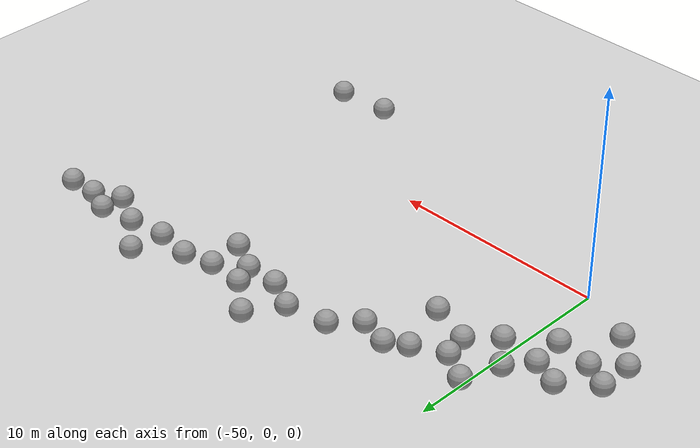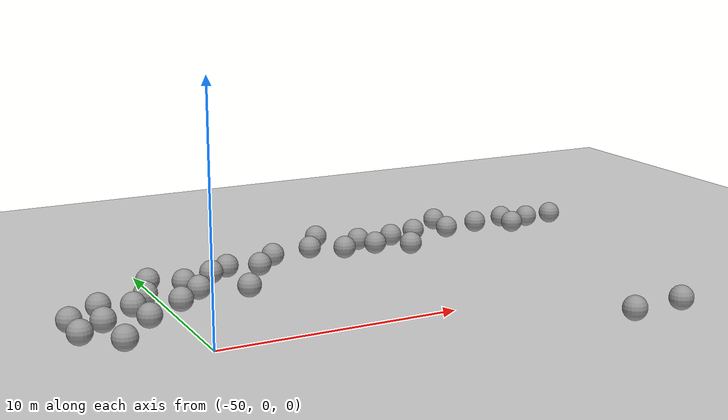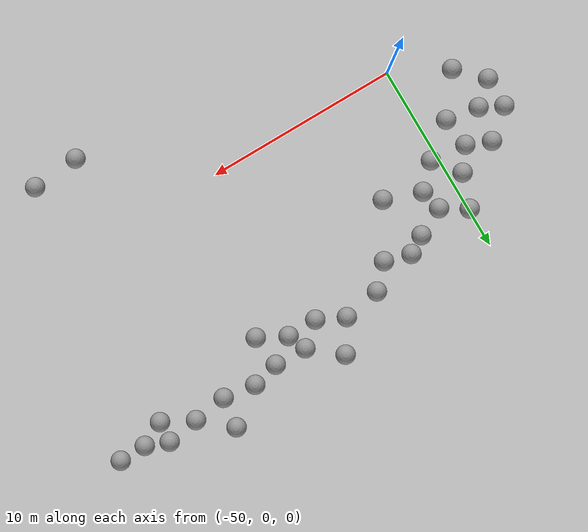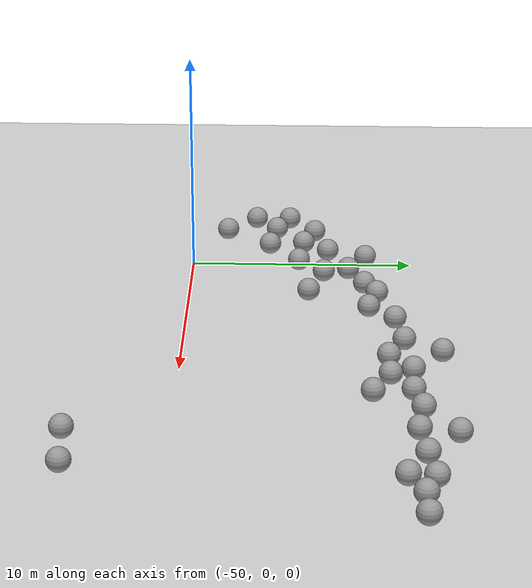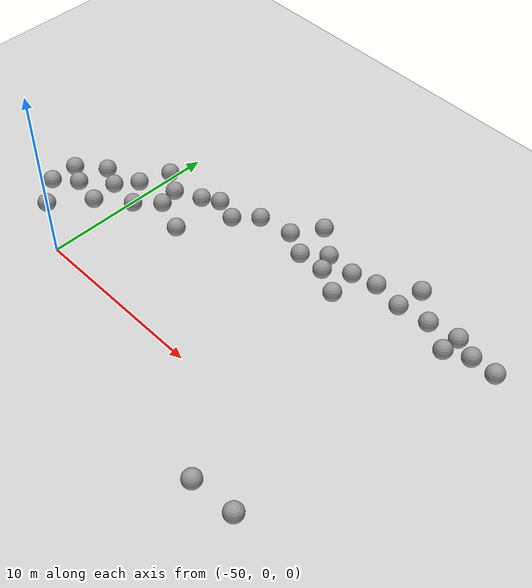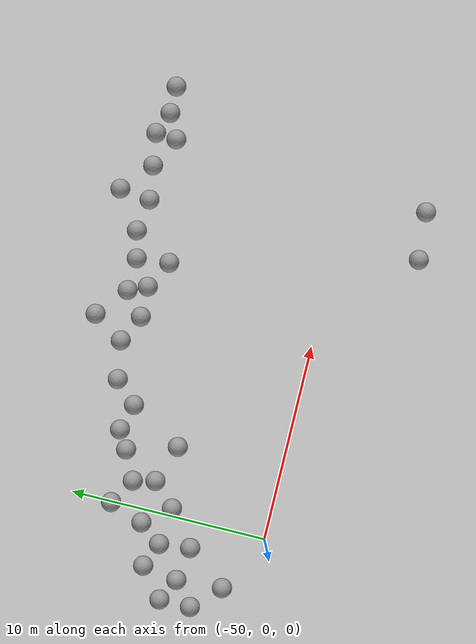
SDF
<sdf version="1.6">
 <world name="default">
  <model name="ground_plane">
   <static>1</static>
   <link name="link">
    <collision name="collision">
     <geometry><plane><normal>0 0 1</normal><size>100 100</size></plane></geometry>
     <surface><friction><ode><mu>100</mu><mu2>50</mu2></ode></friction></surface>
    </collision>
    <visual name="visual">
     <cast_shadows>0</cast_shadows>
     <geometry><plane><normal>0 0 1</normal><size>100 100</size></plane></geometry>
     <material>
      <script><uri>file://media/materials/scripts/gazebo.material</uri><name>Gazebo/Grey</name></script>
     </material>
    </visual>
   </link>
  </model>
  <model name="unit_sphere_0_clone_42">
   <pose>-46.5174 5.3531 0.5 0 -0 0</pose>
   <link name="link">
    <inertial>
     <mass>1</mass>
     <inertia><ixx>0.1</ixx><ixy>0</ixy><ixz>0</ixz><iyy>0.1</iyy><iyz>0</iyz><izz>0.1</izz></inertia>
    </inertial>
    <collision name="collision"><geometry><sphere><radius>0.5</radius></sphere></geometry></collision>
    <visual name="visual">
     <geometry><sphere><radius>0.5</radius></sphere></geometry>
     <material>
      <script><name>Gazebo/Grey</name><uri>file://media/materials/scripts/gazebo.material</uri></script>
     </material>
    </visual>
   </link>
  </model>
  <model name="unit_sphere_0_clone_43">
   <pose>-37.6069 8.01409 0.5 0 -0 0</pose>
   <link name="link">
    <inertial>
     <mass>1</mass>
     <inertia><ixx>0.1</ixx><ixy>0</ixy><ixz>0</ixz><iyy>0.1</iyy><iyz>0</iyz><izz>0.1</izz></inertia>
    </inertial>
    <collision name="collision"><geometry><sphere><radius>0.5</radius></sphere></geometry></collision>
    <visual name="visual">
     <geometry><sphere><radius>0.5</radius></sphere></geometry>
     <material>
      <script><name>Gazebo/Grey</name><uri>file://media/materials/scripts/gazebo.material</uri></script>
     </material>
    </visual>
   </link>
  </model>
  <model name="unit_sphere_0_clone_44">
   <pose>-31.3408 10.2531 0.5 0 -0 0</pose>
   <link name="link">
    <inertial>
     <mass>1</mass>
     <inertia><ixx>0.1</ixx><ixy>0</ixy><ixz>0</ixz><iyy>0.1</iyy><iyz>0</iyz><izz>0.1</izz></inertia>
    </inertial>
    <collision name="collision"><geometry><sphere><radius>0.5</radius></sphere></geometry></collision>
    <visual name="visual">
     <geometry><sphere><radius>0.5</radius></sphere></geometry>
     <material>
      <script><name>Gazebo/Grey</name><uri>file://media/materials/scripts/gazebo.material</uri></script>
     </material>
    </visual>
   </link>
  </model>
  <model name="unit_sphere_0_clone_90">
   <pose>-34.4417 -4.20399 0.5 -0.015539 0.010898 -7.9e-05</pose>
   <link name="link">
    <inertial>
     <mass>1</mass>
     <inertia><ixx>0.1</ixx><ixy>0</ixy><ixz>0</ixz><iyy>0.1</iyy><iyz>0</iyz><izz>0.1</izz></inertia>
    </inertial>
    <collision name="collision"><geometry><sphere><radius>0.5</radius></sphere></geometry></collision>
    <visual name="visual">
     <geometry><sphere><radius>0.5</radius></sphere></geometry>
     <material>
      <script><name>Gazebo/Grey</name><uri>file://media/materials/scripts/gazebo.material</uri></script>
     </material>
    </visual>
   </link>
  </model>
  <model name="unit_sphere_0_clone_101">
   <pose>-54.1271 4.40772 0.5 0 -0 0</pose>
   <link name="link">
    <inertial>
     <mass>1</mass>
     <inertia><ixx>0.1</ixx><ixy>0</ixy><ixz>0</ixz><iyy>0.1</iyy><iyz>0</iyz><izz>0.1</izz></inertia>
    </inertial>
    <collision name="collision"><geometry><sphere><radius>0.5</radius></sphere></geometry></collision>
    <visual name="visual">
     <geometry><sphere><radius>0.5</radius></sphere></geometry>
     <material>
      <script><name>Gazebo/Grey</name><uri>file://media/materials/scripts/gazebo.material</uri></script>
     </material>
    </visual>
   </link>
  </model>
  <model name="unit_sphere_0_clone_102">
   <pose>-49.9988 7.93368 0.5 0 -0 0</pose>
   <link name="link">
    <inertial>
     <mass>1</mass>
     <inertia><ixx>0.1</ixx><ixy>0</ixy><ixz>0</ixz><iyy>0.1</iyy><iyz>0</iyz><izz>0.1</izz></inertia>
    </inertial>
    <collision name="collision"><geometry><sphere><radius>0.5</radius></sphere></geometry></collision>
    <visual name="visual">
     <geometry><sphere><radius>0.5</radius></sphere></geometry>
     <material>
      <script><name>Gazebo/Grey</name><uri>file://media/materials/scripts/gazebo.material</uri></script>
     </material>
    </visual>
   </link>
  </model>
  <model name="unit_sphere_0_clone_103">
   <pose>-43.9323 9.11042 0.5 0 -0 0</pose>
   <link name="link">
    <inertial>
     <mass>1</mass>
     <inertia><ixx>0.1</ixx><ixy>0</ixy><ixz>0</ixz><iyy>0.1</iyy><iyz>0</iyz><izz>0.1</izz></inertia>
    </inertial>
    <collision name="collision"><geometry><sphere><radius>0.5</radius></sphere></geometry></collision>
    <visual name="visual">
     <geometry><sphere><radius>0.5</radius></sphere></geometry>
     <material>
      <script><name>Gazebo/Grey</name><uri>file://media/materials/scripts/gazebo.material</uri></script>
     </material>
    </visual>
   </link>
  </model>
  <model name="unit_sphere_0_clone_104">
   <pose>-39.4486 9.71826 0.5 0 -0 0</pose>
   <link name="link">
    <inertial>
     <mass>1</mass>
     <inertia><ixx>0.1</ixx><ixy>0</ixy><ixz>0</ixz><iyy>0.1</iyy><iyz>0</iyz><izz>0.1</izz></inertia>
    </inertial>
    <collision name="collision"><geometry><sphere><radius>0.5</radius></sphere></geometry></collision>
    <visual name="visual">
     <geometry><sphere><radius>0.5</radius></sphere></geometry>
     <material>
      <script><name>Gazebo/Grey</name><uri>file://media/materials/scripts/gazebo.material</uri></script>
     </material>
    </visual>
   </link>
  </model>
  <model name="unit_sphere_0_clone_105">
   <pose>-34.5379 11.328 0.5 0 -0 0</pose>
   <link name="link">
    <inertial>
     <mass>1</mass>
     <inertia><ixx>0.1</ixx><ixy>0</ixy><ixz>0</ixz><iyy>0.1</iyy><iyz>0</iyz><izz>0.1</izz></inertia>
    </inertial>
    <collision name="collision"><geometry><sphere><radius>0.5</radius></sphere></geometry></collision>
    <visual name="visual">
     <geometry><sphere><radius>0.5</radius></sphere></geometry>
     <material>
      <script><name>Gazebo/Grey</name><uri>file://media/materials/scripts/gazebo.material</uri></script>
     </material>
    </visual>
   </link>
  </model>
  <model name="unit_sphere_1_clone_101">
   <pose>-32 -4 0.5 0 -0 0</pose>
   <link name="link">
    <inertial>
     <mass>1</mass>
     <inertia><ixx>0.1</ixx><ixy>0</ixy><ixz>0</ixz><iyy>0.1</iyy><iyz>0</iyz><izz>0.1</izz></inertia>
    </inertial>
    <collision name="collision"><geometry><sphere><radius>0.5</radius></sphere></geometry></collision>
    <visual name="visual">
     <geometry><sphere><radius>0.5</radius></sphere></geometry>
     <material>
      <script><name>Gazebo/Grey</name><uri>file://media/materials/scripts/gazebo.material</uri></script>
     </material>
    </visual>
   </link>
  </model>
  <model name="unit_sphere_1_clone_143">
   <pose>-28.793 9.82665 0.5 0 -0 0</pose>
   <link name="link">
    <inertial>
     <mass>1</mass>
     <inertia><ixx>0.1</ixx><ixy>0</ixy><ixz>0</ixz><iyy>0.1</iyy><iyz>0</iyz><izz>0.1</izz></inertia>
    </inertial>
    <collision name="collision"><geometry><sphere><radius>0.5</radius></sphere></geometry></collision>
    <visual name="visual">
     <geometry><sphere><radius>0.5</radius></sphere></geometry>
     <material>
      <script><name>Gazebo/Grey</name><uri>file://media/materials/scripts/gazebo.material</uri></script>
     </material>
    </visual>
   </link>
  </model>
  <model name="unit_sphere_1_clone_144">
   <pose>-30.1822 9.80294 0.5 0 -0 0</pose>
   <link name="link">
    <inertial>
     <mass>1</mass>
     <inertia><ixx>0.1</ixx><ixy>0</ixy><ixz>0</ixz><iyy>0.1</iyy><iyz>0</iyz><izz>0.1</izz></inertia>
    </inertial>
    <collision name="collision"><geometry><sphere><radius>0.5</radius></sphere></geometry></collision>
    <visual name="visual">
     <geometry><sphere><radius>0.5</radius></sphere></geometry>
     <material>
      <script><name>Gazebo/Grey</name><uri>file://media/materials/scripts/gazebo.material</uri></script>
     </material>
    </visual>
   </link>
  </model>
  <model name="unit_sphere_1_clone_145">
   <pose>-31.4192 9.17784 0.5 0 -0 0</pose>
   <link name="link">
    <inertial>
     <mass>1</mass>
     <inertia><ixx>0.1</ixx><ixy>0</ixy><ixz>0</ixz><iyy>0.1</iyy><iyz>0</iyz><izz>0.1</izz></inertia>
    </inertial>
    <collision name="collision"><geometry><sphere><radius>0.5</radius></sphere></geometry></collision>
    <visual name="visual">
     <geometry><sphere><radius>0.5</radius></sphere></geometry>
     <material>
      <script><name>Gazebo/Grey</name><uri>file://media/materials/scripts/gazebo.material</uri></script>
     </material>
    </visual>
   </link>
  </model>
  <model name="unit_sphere_1_clone_146">
   <pose>-33 10 0.5 0 -0 0</pose>
   <link name="link">
    <inertial>
     <mass>1</mass>
     <inertia><ixx>0.1</ixx><ixy>0</ixy><ixz>0</ixz><iyy>0.1</iyy><iyz>0</iyz><izz>0.1</izz></inertia>
    </inertial>
    <collision name="collision"><geometry><sphere><radius>0.5</radius></sphere></geometry></collision>
    <visual name="visual">
     <geometry><sphere><radius>0.5</radius></sphere></geometry>
     <material>
      <script><name>Gazebo/Grey</name><uri>file://media/materials/scripts/gazebo.material</uri></script>
     </material>
    </visual>
   </link>
  </model>
  <model name="unit_sphere_1_clone_147">
   <pose>-34.7295 9.75722 0.5 0 -0 0</pose>
   <link name="link">
    <inertial>
     <mass>1</mass>
     <inertia><ixx>0.1</ixx><ixy>0</ixy><ixz>0</ixz><iyy>0.1</iyy><iyz>0</iyz><izz>0.1</izz></inertia>
    </inertial>
    <collision name="collision"><geometry><sphere><radius>0.5</radius></sphere></geometry></collision>
    <visual name="visual">
     <geometry><sphere><radius>0.5</radius></sphere></geometry>
     <material>
      <script><name>Gazebo/Grey</name><uri>file://media/materials/scripts/gazebo.material</uri></script>
     </material>
    </visual>
   </link>
  </model>
  <model name="unit_sphere_1_clone_148">
   <pose>-36.4006 10 0.5 0 -0 0</pose>
   <link name="link">
    <inertial>
     <mass>1</mass>
     <inertia><ixx>0.1</ixx><ixy>0</ixy><ixz>0</ixz><iyy>0.1</iyy><iyz>0</iyz><izz>0.1</izz></inertia>
    </inertial>
    <collision name="collision"><geometry><sphere><radius>0.5</radius></sphere></geometry></collision>
    <visual name="visual">
     <geometry><sphere><radius>0.5</radius></sphere></geometry>
     <material>
      <script><name>Gazebo/Grey</name><uri>file://media/materials/scripts/gazebo.material</uri></script>
     </material>
    </visual>
   </link>
  </model>
  <model name="unit_sphere_1_clone_149">
   <pose>-37.7791 9.66436 0.5 0 -0 0</pose>
   <link name="link">
    <inertial>
     <mass>1</mass>
     <inertia><ixx>0.1</ixx><ixy>0</ixy><ixz>0</ixz><iyy>0.1</iyy><iyz>0</iyz><izz>0.1</izz></inertia>
    </inertial>
    <collision name="collision"><geometry><sphere><radius>0.5</radius></sphere></geometry></collision>
    <visual name="visual">
     <geometry><sphere><radius>0.5</radius></sphere></geometry>
     <material>
      <script><name>Gazebo/Grey</name><uri>file://media/materials/scripts/gazebo.material</uri></script>
     </material>
    </visual>
   </link>
  </model>
  <model name="unit_sphere_1_clone_150">
   <pose>-39.0416 8.77234 0.5 0 -0 0</pose>
   <link name="link">
    <inertial>
     <mass>1</mass>
     <inertia><ixx>0.1</ixx><ixy>0</ixy><ixz>0</ixz><iyy>0.1</iyy><iyz>0</iyz><izz>0.1</izz></inertia>
    </inertial>
    <collision name="collision"><geometry><sphere><radius>0.5</radius></sphere></geometry></collision>
    <visual name="visual">
     <geometry><sphere><radius>0.5</radius></sphere></geometry>
     <material>
      <script><name>Gazebo/Grey</name><uri>file://media/materials/scripts/gazebo.material</uri></script>
     </material>
    </visual>
   </link>
  </model>
  <model name="unit_sphere_1_clone_151">
   <pose>-40.5983 8.74661 0.5 0 -0 0</pose>
   <link name="link">
    <inertial>
     <mass>1</mass>
     <inertia><ixx>0.1</ixx><ixy>0</ixy><ixz>0</ixz><iyy>0.1</iyy><iyz>0</iyz><izz>0.1</izz></inertia>
    </inertial>
    <collision name="collision"><geometry><sphere><radius>0.5</radius></sphere></geometry></collision>
    <visual name="visual">
     <geometry><sphere><radius>0.5</radius></sphere></geometry>
     <material>
      <script><name>Gazebo/Grey</name><uri>file://media/materials/scripts/gazebo.material</uri></script>
     </material>
    </visual>
   </link>
  </model>
  <model name="unit_sphere_1_clone_152">
   <pose>-41 11 0.5 0 -0 0</pose>
   <link name="link">
    <inertial>
     <mass>1</mass>
     <inertia><ixx>0.1</ixx><ixy>0</ixy><ixz>0</ixz><iyy>0.1</iyy><iyz>0</iyz><izz>0.1</izz></inertia>
    </inertial>
    <collision name="collision"><geometry><sphere><radius>0.5</radius></sphere></geometry></collision>
    <visual name="visual">
     <geometry><sphere><radius>0.5</radius></sphere></geometry>
     <material>
      <script><name>Gazebo/Grey</name><uri>file://media/materials/scripts/gazebo.material</uri></script>
     </material>
    </visual>
   </link>
  </model>
  <model name="unit_sphere_1_clone_153">
   <pose>-42.003 9.43991 0.5 0 -0 0</pose>
   <link name="link">
    <inertial>
     <mass>1</mass>
     <inertia><ixx>0.1</ixx><ixy>0</ixy><ixz>0</ixz><iyy>0.1</iyy><iyz>0</iyz><izz>0.1</izz></inertia>
    </inertial>
    <collision name="collision"><geometry><sphere><radius>0.5</radius></sphere></geometry></collision>
    <visual name="visual">
     <geometry><sphere><radius>0.5</radius></sphere></geometry>
     <material>
      <script><name>Gazebo/Grey</name><uri>file://media/materials/scripts/gazebo.material</uri></script>
     </material>
    </visual>
   </link>
  </model>
  <model name="unit_sphere_1_clone_154">
   <pose>-45 8 0.5 0 -0 0</pose>
   <link name="link">
    <inertial>
     <mass>1</mass>
     <inertia><ixx>0.1</ixx><ixy>0</ixy><ixz>0</ixz><iyy>0.1</iyy><iyz>0</iyz><izz>0.1</izz></inertia>
    </inertial>
    <collision name="collision"><geometry><sphere><radius>0.5</radius></sphere></geometry></collision>
    <visual name="visual">
     <geometry><sphere><radius>0.5</radius></sphere></geometry>
     <material>
      <script><name>Gazebo/Grey</name><uri>file://media/materials/scripts/gazebo.material</uri></script>
     </material>
    </visual>
   </link>
  </model>
  <model name="unit_sphere_1_clone_155">
   <pose>-46.3586 8.38733 0.5 -0.027429 0.045384 -0.000637</pose>
   <link name="link">
    <inertial>
     <mass>1</mass>
     <inertia><ixx>0.1</ixx><ixy>0</ixy><ixz>0</ixz><iyy>0.1</iyy><iyz>0</iyz><izz>0.1</izz></inertia>
    </inertial>
    <collision name="collision"><geometry><sphere><radius>0.5</radius></sphere></geometry></collision>
    <visual name="visual">
     <geometry><sphere><radius>0.5</radius></sphere></geometry>
     <material>
      <script><name>Gazebo/Grey</name><uri>file://media/materials/scripts/gazebo.material</uri></script>
     </material>
    </visual>
   </link>
  </model>
  <model name="unit_sphere_1_clone_156">
   <pose>-47.2598 7.84314 0.5 0.02742 -0.045177 -0.000632</pose>
   <link name="link">
    <inertial>
     <mass>1</mass>
     <inertia><ixx>0.1</ixx><ixy>0</ixy><ixz>0</ixz><iyy>0.1</iyy><iyz>0</iyz><izz>0.1</izz></inertia>
    </inertial>
    <collision name="collision"><geometry><sphere><radius>0.5</radius></sphere></geometry></collision>
    <visual name="visual">
     <geometry><sphere><radius>0.5</radius></sphere></geometry>
     <material>
      <script><name>Gazebo/Grey</name><uri>file://media/materials/scripts/gazebo.material</uri></script>
     </material>
    </visual>
   </link>
  </model>
  <model name="unit_sphere_1_clone_157">
   <pose>-48.7 7.14076 0.5 0 -0 0</pose>
   <link name="link">
    <inertial>
     <mass>1</mass>
     <inertia><ixx>0.1</ixx><ixy>0</ixy><ixz>0</ixz><iyy>0.1</iyy><iyz>0</iyz><izz>0.1</izz></inertia>
    </inertial>
    <collision name="collision"><geometry><sphere><radius>0.5</radius></sphere></geometry></collision>
    <visual name="visual">
     <geometry><sphere><radius>0.5</radius></sphere></geometry>
     <material>
      <script><name>Gazebo/Grey</name><uri>file://media/materials/scripts/gazebo.material</uri></script>
     </material>
    </visual>
   </link>
  </model>
  <model name="unit_sphere_1_clone_158">
   <pose>-48.4424 6.02995 0.5 0 -0 0</pose>
   <link name="link">
    <inertial>
     <mass>1</mass>
     <inertia><ixx>0.1</ixx><ixy>0</ixy><ixz>0</ixz><iyy>0.1</iyy><iyz>0</iyz><izz>0.1</izz></inertia>
    </inertial>
    <collision name="collision"><geometry><sphere><radius>0.5</radius></sphere></geometry></collision>
    <visual name="visual">
     <geometry><sphere><radius>0.5</radius></sphere></geometry>
     <material>
      <script><name>Gazebo/Grey</name><uri>file://media/materials/scripts/gazebo.material</uri></script>
     </material>
    </visual>
   </link>
  </model>
  <model name="unit_sphere_1_clone_159">
   <pose>-50.6225 6.21314 0.5 0 -0 0</pose>
   <link name="link">
    <inertial>
     <mass>1</mass>
     <inertia><ixx>0.1</ixx><ixy>0</ixy><ixz>0</ixz><iyy>0.1</iyy><iyz>0</iyz><izz>0.1</izz></inertia>
    </inertial>
    <collision name="collision"><geometry><sphere><radius>0.5</radius></sphere></geometry></collision>
    <visual name="visual">
     <geometry><sphere><radius>0.5</radius></sphere></geometry>
     <material>
      <script><name>Gazebo/Grey</name><uri>file://media/materials/scripts/gazebo.material</uri></script>
     </material>
    </visual>
   </link>
  </model>
  <model name="unit_sphere_1_clone_160">
   <pose>-49.5756 4.89135 0.5 0 -0 0</pose>
   <link name="link">
    <inertial>
     <mass>1</mass>
     <inertia><ixx>0.1</ixx><ixy>0</ixy><ixz>0</ixz><iyy>0.1</iyy><iyz>0</iyz><izz>0.1</izz></inertia>
    </inertial>
    <collision name="collision"><geometry><sphere><radius>0.5</radius></sphere></geometry></collision>
    <visual name="visual">
     <geometry><sphere><radius>0.5</radius></sphere></geometry>
     <material>
      <script><name>Gazebo/Grey</name><uri>file://media/materials/scripts/gazebo.material</uri></script>
     </material>
    </visual>
   </link>
  </model>
  <model name="unit_sphere_1_clone_161">
   <pose>-52.6915 5.60377 0.5 0 -0 0</pose>
   <link name="link">
    <inertial>
     <mass>1</mass>
     <inertia><ixx>0.1</ixx><ixy>0</ixy><ixz>0</ixz><iyy>0.1</iyy><iyz>0</iyz><izz>0.1</izz></inertia>
    </inertial>
    <collision name="collision"><geometry><sphere><radius>0.5</radius></sphere></geometry></collision>
    <visual name="visual">
     <geometry><sphere><radius>0.5</radius></sphere></geometry>
     <material>
      <script><name>Gazebo/Grey</name><uri>file://media/materials/scripts/gazebo.material</uri></script>
     </material>
    </visual>
   </link>
  </model>
  <model name="unit_sphere_1_clone_162">
   <pose>-51.2765 3.53152 0.5 0 -0 0</pose>
   <link name="link">
    <inertial>
     <mass>1</mass>
     <inertia><ixx>0.1</ixx><ixy>0</ixy><ixz>0</ixz><iyy>0.1</iyy><iyz>0</iyz><izz>0.1</izz></inertia>
    </inertial>
    <collision name="collision"><geometry><sphere><radius>0.5</radius></sphere></geometry></collision>
    <visual name="visual">
     <geometry><sphere><radius>0.5</radius></sphere></geometry>
     <material>
      <script><name>Gazebo/Grey</name><uri>file://media/materials/scripts/gazebo.material</uri></script>
     </material>
    </visual>
   </link>
  </model>
  <model name="unit_sphere_1_clone_163">
   <pose>-51.453 5.09346 0.5 0 -0 0</pose>
   <link name="link">
    <inertial>
     <mass>1</mass>
     <inertia><ixx>0.1</ixx><ixy>0</ixy><ixz>0</ixz><iyy>0.1</iyy><iyz>0</iyz><izz>0.1</izz></inertia>
    </inertial>
    <collision name="collision"><geometry><sphere><radius>0.5</radius></sphere></geometry></collision>
    <visual name="visual">
     <geometry><sphere><radius>0.5</radius></sphere></geometry>
     <material>
      <script><name>Gazebo/Grey</name><uri>file://media/materials/scripts/gazebo.material</uri></script>
     </material>
    </visual>
   </link>
  </model>
  <model name="unit_sphere_1_clone_164">
   <pose>-52.9824 3.82132 0.5 0 -0 0</pose>
   <link name="link">
    <inertial>
     <mass>1</mass>
     <inertia><ixx>0.1</ixx><ixy>0</ixy><ixz>0</ixz><iyy>0.1</iyy><iyz>0</iyz><izz>0.1</izz></inertia>
    </inertial>
    <collision name="collision"><geometry><sphere><radius>0.5</radius></sphere></geometry></collision>
    <visual name="visual">
     <geometry><sphere><radius>0.5</radius></sphere></geometry>
     <material>
      <script><name>Gazebo/Grey</name><uri>file://media/materials/scripts/gazebo.material</uri></script>
     </material>
    </visual>
   </link>
  </model>
  <model name="unit_sphere_1_clone_165">
   <pose>-52.829 1.5028 0.5 0 -0 0</pose>
   <link name="link">
    <inertial>
     <mass>1</mass>
     <inertia><ixx>0.1</ixx><ixy>0</ixy><ixz>0</ixz><iyy>0.1</iyy><iyz>0</iyz><izz>0.1</izz></inertia>
    </inertial>
    <collision name="collision"><geometry><sphere><radius>0.5</radius></sphere></geometry></collision>
    <visual name="visual">
     <geometry><sphere><radius>0.5</radius></sphere></geometry>
     <material>
      <script><name>Gazebo/Grey</name><uri>file://media/materials/scripts/gazebo.material</uri></script>
     </material>
    </visual>
   </link>
  </model>
  <model name="unit_sphere_1_clone_167">
   <pose>-54.1232 2.83653 0.5 0 -0 0</pose>
   <link name="link">
    <inertial>
     <mass>1</mass>
     <inertia><ixx>0.1</ixx><ixy>0</ixy><ixz>0</ixz><iyy>0.1</iyy><iyz>0</iyz><izz>0.1</izz></inertia>
    </inertial>
    <collision name="collision"><geometry><sphere><radius>0.5</radius></sphere></geometry></collision>
    <visual name="visual">
     <geometry><sphere><radius>0.5</radius></sphere></geometry>
     <material>
      <script><name>Gazebo/Grey</name><uri>file://media/materials/scripts/gazebo.material</uri></script>
     </material>
    </visual>
   </link>
  </model>
 </world>
</sdf>
